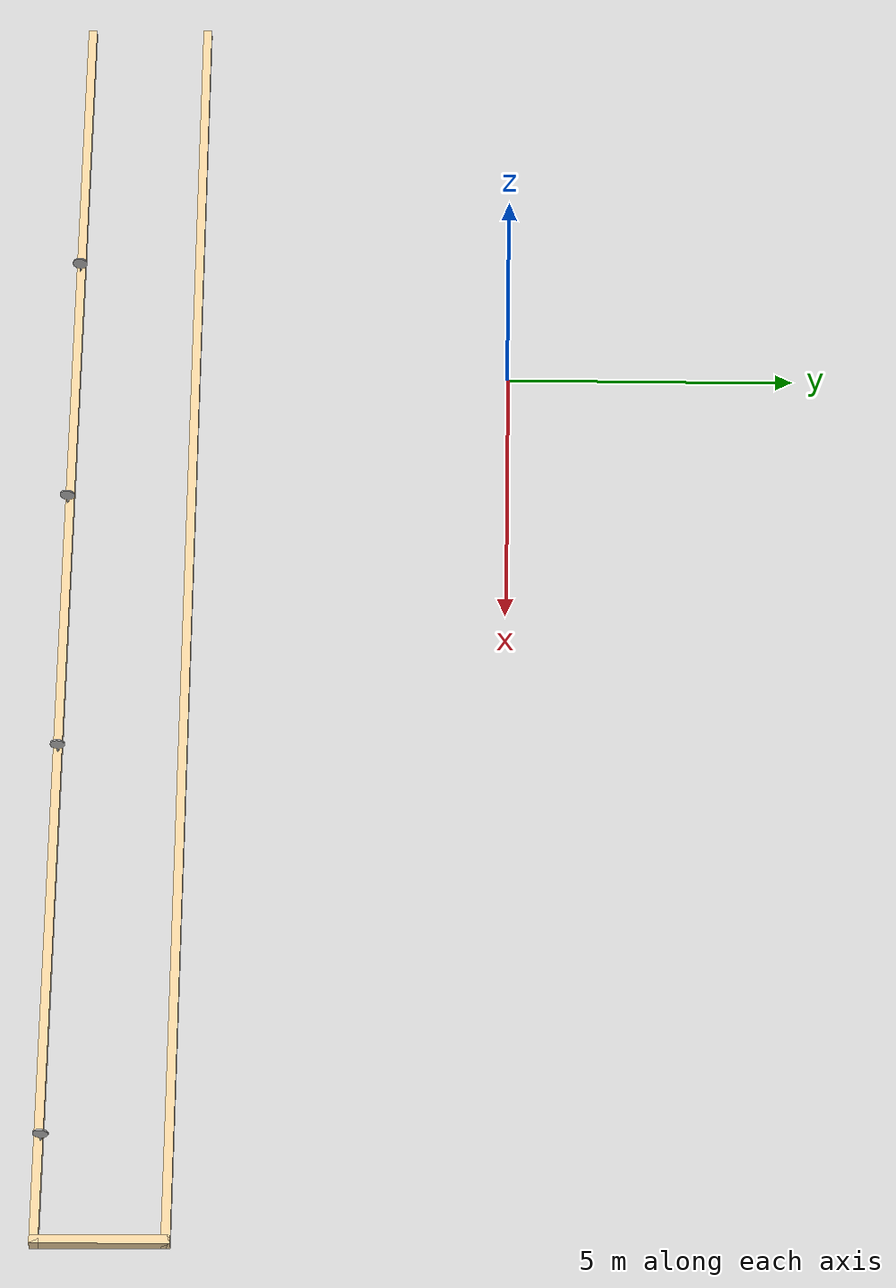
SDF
<sdf version="1.7">
 <world name="default">
  <light name="sun" type="directional">
   <pose>0 0 10 0 -0 0</pose>
   <diffuse>0.8 0.8 0.8 1</diffuse>
   <specular>0.1 0.1 0.1 1</specular>
   <attenuation>
    <range>1000</range>
    <constant>0.9</constant>
    <linear>0.01</linear>
    <quadratic>0.001</quadratic>
   </attenuation>
   <direction>-0.5 0.5 -1</direction>
   <spot><inner_angle>0</inner_angle><outer_angle>0</outer_angle><falloff>0</falloff></spot>
  </light>
  <model name="ground_plane">
   <static>1</static>
   <link name="link">
    <collision name="collision">
     <geometry><plane><normal>0 0 1</normal><size>100 100</size></plane></geometry>
     <surface><friction><ode><mu>100</mu><mu2>50</mu2></ode></friction></surface>
    </collision>
    <visual name="visual">
     <cast_shadows>0</cast_shadows>
     <geometry><plane><normal>0 0 1</normal><size>100 100</size></plane></geometry>
     <material>
      <script><uri>file://media/materials/scripts/gazebo.material</uri><name>Gazebo/Grey</name></script>
     </material>
    </visual>
   </link>
  </model>
  <gravity>0 0 -9.8</gravity>
  <magnetic_field>6e-06 2.3e-05 -4.2e-05</magnetic_field>
  <atmosphere type="adiabatic"/>
  <physics name="default_physics" default="0" type="ode">
   <max_step_size>0.001</max_step_size>
   <real_time_factor>1</real_time_factor>
   <real_time_update_rate>1000</real_time_update_rate>
  </physics>
  <scene><ambient>0.4 0.4 0.4 1</ambient><background>0.7 0.7 0.7 1</background><shadows>1</shadows></scene>
  <spherical_coordinates>
   <surface_model>EARTH_WGS84</surface_model>
   <latitude_deg>0</latitude_deg>
   <longitude_deg>0</longitude_deg>
   <elevation>0</elevation>
   <heading_deg>0</heading_deg>
  </spherical_coordinates>
  <audio><device>default</device></audio>
  <model name="70_sign">
   <link name="link_0">
    <inertial>
     <mass>1</mass>
     <inertia>
      <ixx>0.166667</ixx>
      <ixy>0</ixy>
      <ixz>0</ixz>
      <iyy>0.166667</iyy>
      <iyz>0</iyz>
      <izz>0.166667</izz>
     </inertia>
    </inertial>
    <pose>-0 0 5e-06 0 -0 0</pose>
    <visual name="visual">
     <geometry><mesh><uri>/home/maxim/ros2_ws/world/signs/70.dae</uri><scale>1 1 1</scale></mesh></geometry>
    </visual>
    <collision name="collision">
     <geometry><mesh><uri>/home/maxim/ros2_ws/world/signs/70.dae</uri><scale>1 1 1</scale></mesh></geometry>
     <surface>
      <friction>
       <ode><mu>1</mu><mu2>1</mu2><fdir1>0 0 0</fdir1><slip1>0</slip1><slip2>0</slip2></ode>
       <torsional>
        <coefficient>1</coefficient>
        <patch_radius>0</patch_radius>
        <surface_radius>0</surface_radius>
        <use_patch_radius>1</use_patch_radius>
        <ode><slip>0</slip></ode>
       </torsional>
      </friction>
      <bounce><restitution_coefficient>0</restitution_coefficient><threshold>1e+06</threshold></bounce>
      <contact>
       <collide_without_contact>0</collide_without_contact>
       <collide_without_contact_bitmask>1</collide_without_contact_bitmask>
       <collide_bitmask>1</collide_bitmask>
       <ode>
        <soft_cfm>0</soft_cfm>
        <soft_erp>0.2</soft_erp>
        <kp>1e+13</kp>
        <kd>1</kd>
        <max_vel>0.01</max_vel>
        <min_depth>0</min_depth>
       </ode>
       <bullet>
        <split_impulse>1</split_impulse>
        <split_impulse_penetration_threshold>-0.01</split_impulse_penetration_threshold>
        <soft_cfm>0</soft_cfm>
        <soft_erp>0.2</soft_erp>
        <kp>1e+13</kp>
        <kd>1</kd>
       </bullet>
      </contact>
     </surface>
    </collision>
   </link>
   <static>1</static>
   <pose>-2.00178 -7.60918 -2.23205 0.089027 -0.003135 -1.60114</pose>
  </model>
  <model name="road_lines_2">
   <pose>4.74742 -4.83023 -0 0 -0 1.5794</pose>
   <link name="Wall_1">
    <collision name="Wall_1_Collision">
     <geometry><box><size>25 0.15 0.2</size></box></geometry>
     <pose>0 0 0.1 0 -0 0</pose>
    </collision>
    <visual name="Wall_1_Visual">
     <pose>0 0 0.1 0 -0 0</pose>
     <geometry><box><size>25 0.15 0.2</size></box></geometry>
     <material>
      <script><uri>file://media/materials/scripts/gazebo.material</uri><name>Gazebo/Grey</name></script>
      <ambient>0.921569 0.807843 0.615686 1</ambient>
     </material>
     <meta><layer>0</layer></meta>
    </visual>
    <pose>-2.7015 0 0 0 -0 -1.5708</pose>
   </link>
   <link name="Wall_2">
    <collision name="Wall_2_Collision">
     <geometry><box><size>2.25 0.15 0.2</size></box></geometry>
     <pose>0 0 0.1 0 -0 0</pose>
    </collision>
    <visual name="Wall_2_Visual">
     <pose>0 0 0.1 0 -0 0</pose>
     <geometry><box><size>2.25 0.15 0.2</size></box></geometry>
     <material>
      <script><uri>file://media/materials/scripts/gazebo.material</uri><name>Gazebo/Grey</name></script>
      <ambient>0.921569 0.807843 0.615686 1</ambient>
     </material>
     <meta><layer>0</layer></meta>
    </visual>
    <pose>-1.6515 -12.425 0 0 -0 0</pose>
   </link>
   <link name="Wall_3">
    <collision name="Wall_3_Collision">
     <geometry><box><size>25 0.15 0.2</size></box></geometry>
     <pose>0 0 0.1 0 -0 0</pose>
    </collision>
    <visual name="Wall_3_Visual">
     <pose>0 0 0.1 0 -0 0</pose>
     <geometry><box><size>25 0.15 0.2</size></box></geometry>
     <material>
      <script><uri>file://media/materials/scripts/gazebo.material</uri><name>Gazebo/Grey</name></script>
      <ambient>0.921569 0.807843 0.615686 1</ambient>
     </material>
     <meta><layer>0</layer></meta>
    </visual>
    <pose>-0.601499 0 0 0 -0 1.5708</pose>
   </link>
   <static>1</static>
  </model>
  <model name="30_sign">
   <link name="link_0">
    <inertial>
     <mass>1</mass>
     <inertia>
      <ixx>0.166667</ixx>
      <ixy>0</ixy>
      <ixz>0</ixz>
      <iyy>0.166667</iyy>
      <iyz>0</iyz>
      <izz>0.166667</izz>
     </inertia>
    </inertial>
    <pose>1e-06 3e-06 -4e-06 0 -0 0</pose>
    <visual name="visual">
     <geometry><mesh><uri>/home/maxim/ros2_ws/world/signs/30.dae</uri><scale>1 1 1</scale></mesh></geometry>
    </visual>
    <collision name="collision">
     <geometry><mesh><uri>/home/maxim/ros2_ws/world/signs/30.dae</uri><scale>1 1 1</scale></mesh></geometry>
     <surface>
      <friction>
       <ode><mu>1</mu><mu2>1</mu2><fdir1>0 0 0</fdir1><slip1>0</slip1><slip2>0</slip2></ode>
       <torsional>
        <coefficient>1</coefficient>
        <patch_radius>0</patch_radius>
        <surface_radius>0</surface_radius>
        <use_patch_radius>1</use_patch_radius>
        <ode><slip>0</slip></ode>
       </torsional>
      </friction>
      <bounce><restitution_coefficient>0</restitution_coefficient><threshold>1e+06</threshold></bounce>
      <contact>
       <collide_without_contact>0</collide_without_contact>
       <collide_without_contact_bitmask>1</collide_without_contact_bitmask>
       <collide_bitmask>1</collide_bitmask>
       <ode>
        <soft_cfm>0</soft_cfm>
        <soft_erp>0.2</soft_erp>
        <kp>1e+13</kp>
        <kd>1</kd>
        <max_vel>0.01</max_vel>
        <min_depth>0</min_depth>
       </ode>
       <bullet>
        <split_impulse>1</split_impulse>
        <split_impulse_penetration_threshold>-0.01</split_impulse_penetration_threshold>
        <soft_cfm>0</soft_cfm>
        <soft_erp>0.2</soft_erp>
        <kp>1e+13</kp>
        <kd>1</kd>
       </bullet>
      </contact>
     </surface>
    </collision>
   </link>
   <static>1</static>
   <pose>2.90021 -7.57756 -2.23037 0.034973 -0 -1.61512</pose>
  </model>
  <model name="100_sign">
   <link name="link_0">
    <inertial>
     <mass>1</mass>
     <inertia>
      <ixx>0.166667</ixx>
      <ixy>0</ixy>
      <ixz>0</ixz>
      <iyy>0.166667</iyy>
      <iyz>0</iyz>
      <izz>0.166667</izz>
     </inertia>
    </inertial>
    <pose>0 0 4e-06 0 -0 0</pose>
    <visual name="visual">
     <geometry><mesh><uri>/home/maxim/ros2_ws/world/signs/100.dae</uri><scale>1 1 1</scale></mesh></geometry>
    </visual>
    <collision name="collision">
     <geometry><mesh><uri>/home/maxim/ros2_ws/world/signs/100.dae</uri><scale>1 1 1</scale></mesh></geometry>
     <surface>
      <friction>
       <ode><mu>1</mu><mu2>1</mu2><fdir1>0 0 0</fdir1><slip1>0</slip1><slip2>0</slip2></ode>
       <torsional>
        <coefficient>1</coefficient>
        <patch_radius>0</patch_radius>
        <surface_radius>0</surface_radius>
        <use_patch_radius>1</use_patch_radius>
        <ode><slip>0</slip></ode>
       </torsional>
      </friction>
      <bounce><restitution_coefficient>0</restitution_coefficient><threshold>1e+06</threshold></bounce>
      <contact>
       <collide_without_contact>0</collide_without_contact>
       <collide_without_contact_bitmask>1</collide_without_contact_bitmask>
       <collide_bitmask>1</collide_bitmask>
       <ode>
        <soft_cfm>0</soft_cfm>
        <soft_erp>0.2</soft_erp>
        <kp>1e+13</kp>
        <kd>1</kd>
        <max_vel>0.01</max_vel>
        <min_depth>0</min_depth>
       </ode>
       <bullet>
        <split_impulse>1</split_impulse>
        <split_impulse_penetration_threshold>-0.01</split_impulse_penetration_threshold>
        <soft_cfm>0</soft_cfm>
        <soft_erp>0.2</soft_erp>
        <kp>1e+13</kp>
        <kd>1</kd>
       </bullet>
      </contact>
     </surface>
    </collision>
   </link>
   <static>1</static>
   <pose>7.96161 -7.48592 -2.21174 0.007233 -0 -1.58539</pose>
  </model>
  <model name="stop_sign">
   <link name="link_0">
    <inertial>
     <mass>1</mass>
     <inertia>
      <ixx>0.166667</ixx>
      <ixy>0</ixy>
      <ixz>0</ixz>
      <iyy>0.166667</iyy>
      <iyz>0</iyz>
      <izz>0.166667</izz>
     </inertia>
    </inertial>
    <pose>4e-06 -3e-06 3e-06 0 -0 0</pose>
    <visual name="visual">
     <geometry><mesh><uri>/home/maxim/ros2_ws/world/signs/stop.dae</uri><scale>1 1 1</scale></mesh></geometry>
    </visual>
    <collision name="collision">
     <geometry><mesh><uri>/home/maxim/ros2_ws/world/signs/stop.dae</uri><scale>1 1 1</scale></mesh></geometry>
     <surface>
      <friction>
       <ode><mu>1</mu><mu2>1</mu2><fdir1>0 0 0</fdir1><slip1>0</slip1><slip2>0</slip2></ode>
       <torsional>
        <coefficient>1</coefficient>
        <patch_radius>0</patch_radius>
        <surface_radius>0</surface_radius>
        <use_patch_radius>1</use_patch_radius>
        <ode><slip>0</slip></ode>
       </torsional>
      </friction>
      <bounce><restitution_coefficient>0</restitution_coefficient><threshold>1e+06</threshold></bounce>
      <contact>
       <collide_without_contact>0</collide_without_contact>
       <collide_without_contact_bitmask>1</collide_without_contact_bitmask>
       <collide_bitmask>1</collide_bitmask>
       <ode>
        <soft_cfm>0</soft_cfm>
        <soft_erp>0.2</soft_erp>
        <kp>1e+13</kp>
        <kd>1</kd>
        <max_vel>0.01</max_vel>
        <min_depth>0</min_depth>
       </ode>
       <bullet>
        <split_impulse>1</split_impulse>
        <split_impulse_penetration_threshold>-0.01</split_impulse_penetration_threshold>
        <soft_cfm>0</soft_cfm>
        <soft_erp>0.2</soft_erp>
        <kp>1e+13</kp>
        <kd>1</kd>
       </bullet>
      </contact>
     </surface>
    </collision>
   </link>
   <static>1</static>
   <pose>15.3718 -7.38678 -2.2265 0 0 -1.60525</pose>
  </model>
 </world>
</sdf>
